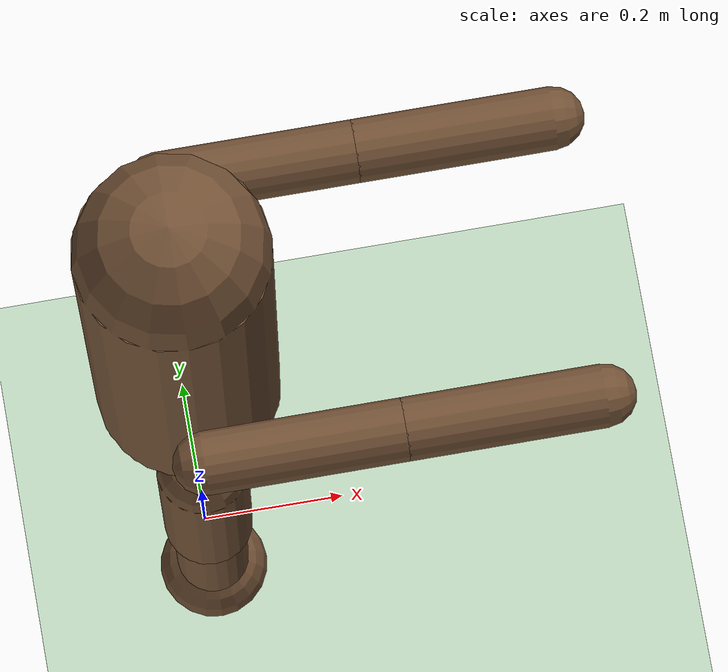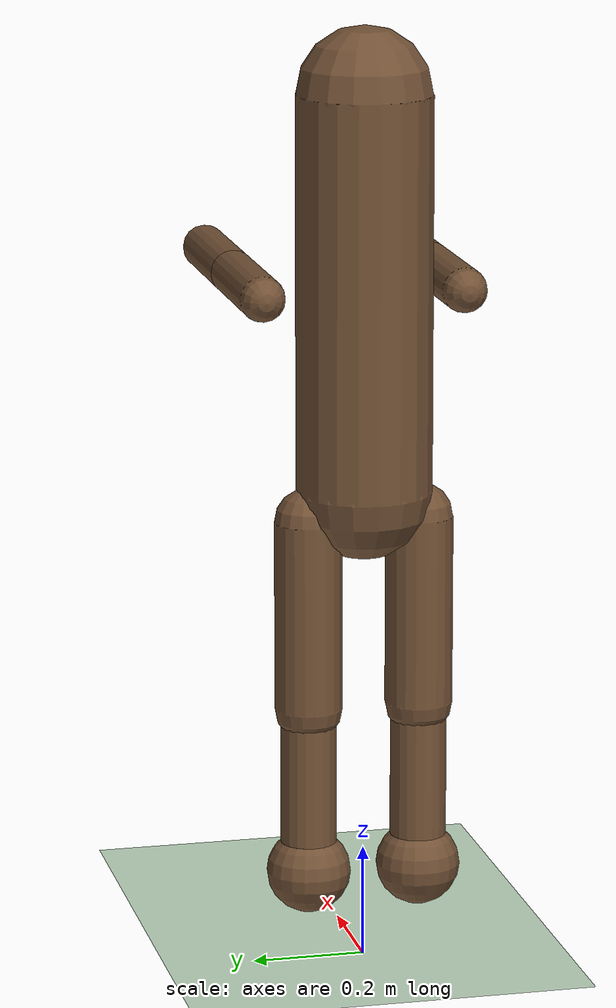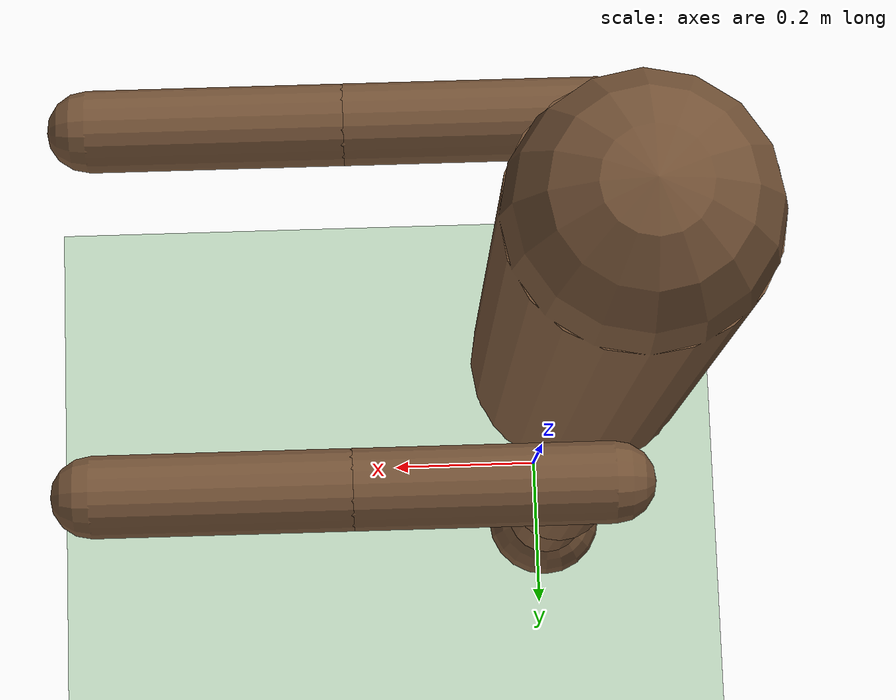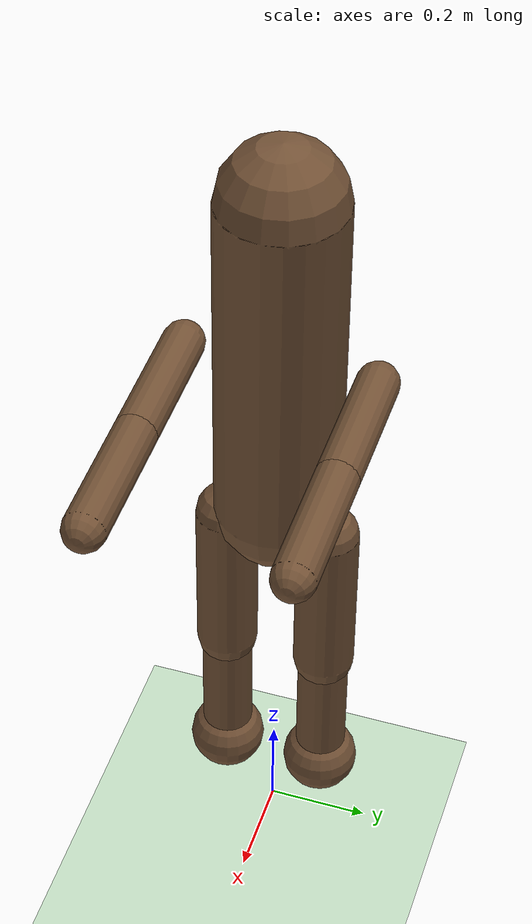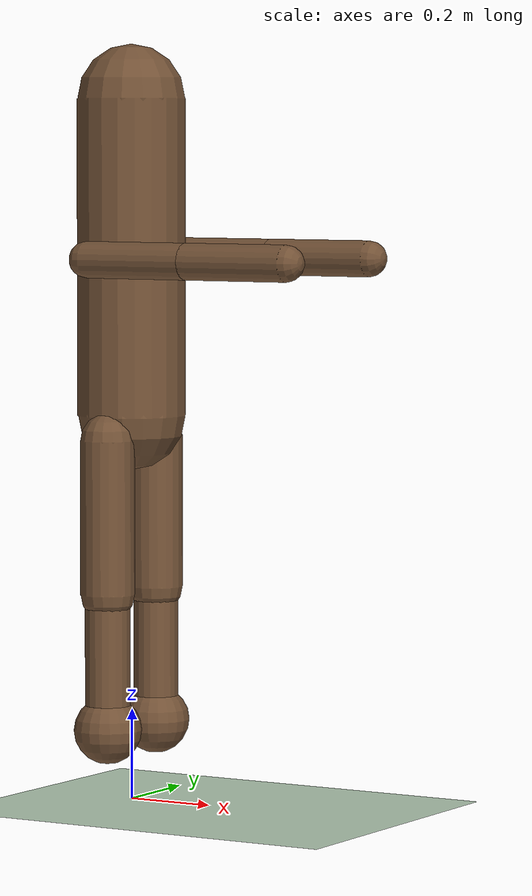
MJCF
<mujoco model="simplified_humanoid">
    <compiler angle="degree" inertiafromgeom="true"/>

    <option timestep="0.003" solver="PGS" iterations="50" />

    <default>
        <joint armature="0.01" damping="1" limited="true"/>
        <geom type="capsule" rgba="0.45 0.32 0.21 1"/>
        <motor ctrllimited="true" ctrlrange="-1 1"/>
    </default>

    <!-- Global view settings -->
    <visual>
        <global azimuth="0" elevation="-20"/>
    </visual>

    <worldbody>

        <!-- ===================== LIGHTING ===================== -->
        <light name="sun"
               directional="true"
               diffuse="1 1 1"
               specular="0.2 0.2 0.2"
               pos="5 5 10"
               dir="-1 -1 -2"
               cutoff="200"
               exponent="5" />

        <light name="fill"
               directional="false"
               diffuse="0.35 0.35 0.35"
               specular="0.1 0.1 0.1"
               pos="0 3 2" />

        <!-- ===================== CAMERA ===================== -->
        <camera name="follow"
                mode="trackcom"
                pos="0 -4 1.6"
                xyaxes="1 0 0 0 0 1" />

        <!-- ===================== GROUND ===================== -->
        <geom name="floor"
              type="plane"
              pos="0 0 0"
              size="20 20 0.1"
              friction="1 0.1 0.1"
              rgba="0.75 0.85 0.75 1" />

        <!-- ===================== HUMANOID ROOT ===================== -->
        <!-- Dynamic torso height inserted by Python -->
        <body name="torso" pos="0 0 0.855">

            <joint name="root_free" type="free"/>

            <!-- Torso -->
            <geom name="torso_geom"
                  type="capsule"
                  size="0.12 0.35"
                  fromto="0 0 0 0 0 0.7" />

            <!-- Head -->
            <geom name="head_geom"
                  type="sphere"
                  size="0.11"
                  pos="0 0 0.45" />

            <!-- ====================== ARMS ================================== -->

            <!-- Right Arm -->
            <body name="right_upper_arm" pos="0 -0.18 0.35">
                <joint name="right_shoulder_pitch" type="hinge" axis="1 0 0" range="-90 90"/>
                <joint name="right_shoulder_roll"  type="hinge" axis="0 1 0" range="-90 90"/>

                <geom name="right_upper_arm_geom"
                      type="capsule"
                      size="0.04"
                      fromto="0 0 0 0.25 0 0"/>

                <body name="right_lower_arm" pos="0.25 0 0">
                    <joint name="right_elbow" type="hinge" axis="0 1 0" range="0 135"/>
                    <geom name="right_lower_arm_geom"
                          type="capsule"
                          size="0.04"
                          fromto="0 0 0 0.25 0 0"/>
                </body>
            </body>

            <!-- Left Arm -->
            <body name="left_upper_arm" pos="0 0.18 0.35">
                <joint name="left_shoulder_pitch" type="hinge" axis="1 0 0" range="-90 90"/>
                <joint name="left_shoulder_roll"  type="hinge" axis="0 1 0" range="-90 90"/>

                <geom name="left_upper_arm_geom"
                      type="capsule"
                      size="0.04"
                      fromto="0 0 0 0.25 0 0"/>

                <body name="left_lower_arm" pos="0.25 0 0">
                    <joint name="left_elbow" type="hinge" axis="0 1 0" range="0 135"/>
                    <geom name="left_lower_arm_geom"
                          type="capsule"
                          size="0.04"
                          fromto="0 0 0 0.25 0 0"/>
                </body>
            </body>

            <!-- ======================== LEGS ================================ -->

            <!-- Right Leg -->
            <body name="right_thigh" pos="0 -0.1 -0.05">

                <joint name="right_hip_pitch" type="hinge" axis="1 0 0" range="-45 45"/>
                <joint name="right_hip_roll"  type="hinge" axis="0 1 0" range="-45 45"/>
                <joint name="right_hip_yaw"   type="hinge" axis="0 0 1" range="-60 60"/>

                <geom name="right_thigh_geom"
                      type="capsule"
                      size="0.06"
                      fromto="0 0 0 0 0 -0.34" />

                <body name="right_shin" pos="0 0 -0.34">
                    <joint name="right_knee" type="hinge" axis="0 1 0" range="-150 -2"/>

                    <geom name="right_shin_geom"
                          type="capsule"
                          size="0.05"
                          fromto="0 0 0 0 0 -0.3" />

                    <body name="right_foot" pos="0 0 -0.3">
                        <geom name="right_foot_geom"
                              type="sphere"
                              size="0.075"
                              pos="0 0 0" />
                    </body>
                </body>
            </body>

            <!-- Left Leg -->
            <body name="left_thigh" pos="0 0.1 -0.05">

                <joint name="left_hip_pitch" type="hinge" axis="-1 0 0" range="-45 45"/>
                <joint name="left_hip_roll"  type="hinge" axis="0 1 0"  range="-45 45"/>
                <joint name="left_hip_yaw"   type="hinge" axis="0 0 -1" range="-60 60"/>

                <geom name="left_thigh_geom"
                      type="capsule"
                      size="0.06"
                      fromto="0 0 0 0 0 -0.34" />

                <body name="left_shin" pos="0 0 -0.34">
                    <joint name="left_knee" type="hinge" axis="0 1 0" range="-150 -2"/>

                    <geom name="left_shin_geom"
                          type="capsule"
                          size="0.05"
                          fromto="0 0 0 0 0 -0.3" />

                    <body name="left_foot" pos="0 0 -0.3">
                        <geom name="left_foot_geom"
                              type="sphere"
                              size="0.075"
                              pos="0 0 0" />
                    </body>
                </body>
            </body>

        </body>
    </worldbody>

    <!-- ===================== ACTUATORS ===================== -->
    <actuator>

        <!-- Arms -->
        <motor name="right_shoulder_pitch_motor" joint="right_shoulder_pitch" gear="60"/>
        <motor name="right_shoulder_roll_motor"  joint="right_shoulder_roll"  gear="60"/>
        <motor name="right_elbow_motor"         joint="right_elbow"          gear="40"/>

        <motor name="left_shoulder_pitch_motor" joint="left_shoulder_pitch" gear="60"/>
        <motor name="left_shoulder_roll_motor"  joint="left_shoulder_roll"  gear="60"/>
        <motor name="left_elbow_motor"          joint="left_elbow"          gear="40"/>

        <!-- Legs -->
        <motor name="right_hip_pitch_motor" joint="right_hip_pitch" gear="150"/>
        <motor name="right_hip_roll_motor"  joint="right_hip_roll"  gear="150"/>
        <motor name="right_hip_yaw_motor"   joint="right_hip_yaw"   gear="150"/>
        <motor name="right_knee_motor"      joint="right_knee"      gear="200"/>

        <motor name="left_hip_pitch_motor"  joint="left_hip_pitch"  gear="150"/>
        <motor name="left_hip_roll_motor"   joint="left_hip_roll"   gear="150"/>
        <motor name="left_hip_yaw_motor"    joint="left_hip_yaw"    gear="150"/>
        <motor name="left_knee_motor"       joint="left_knee"       gear="200"/>

    </actuator>

</mujoco>
